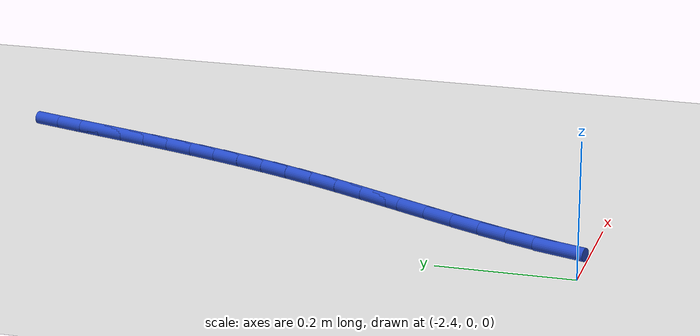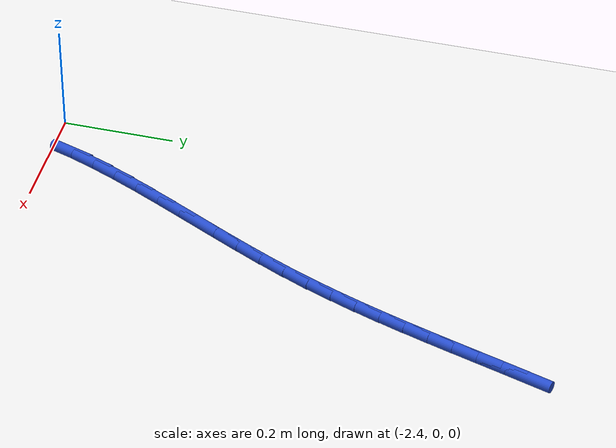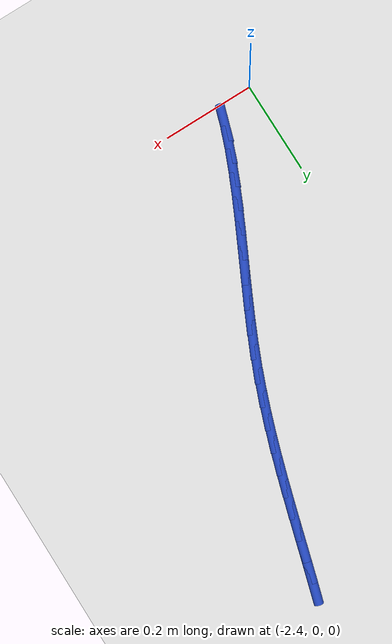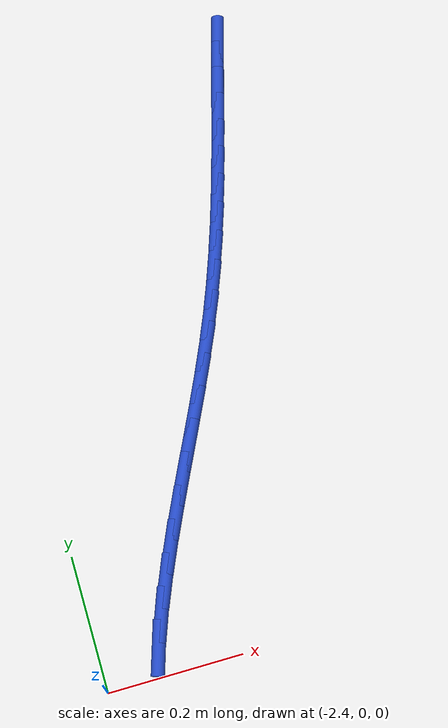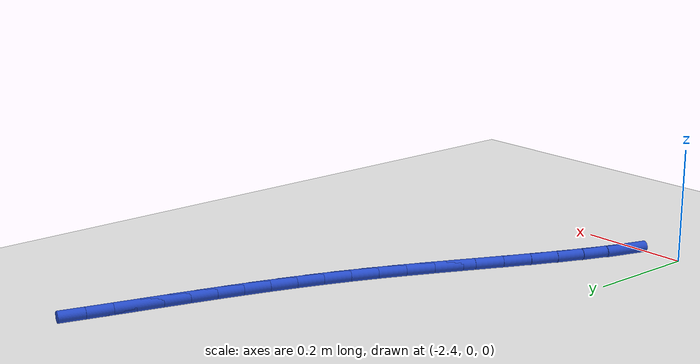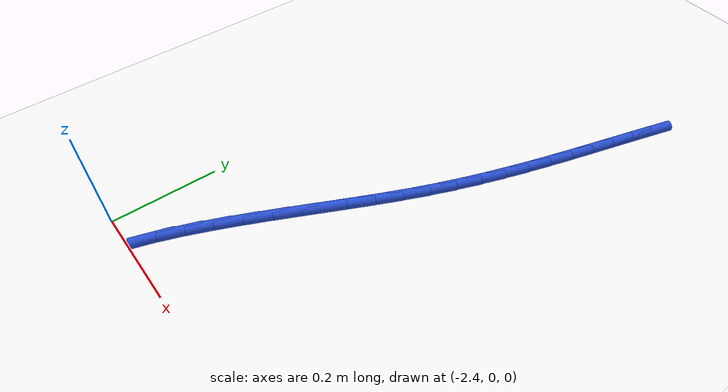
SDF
<sdf version="1.6">
 <world name="default">
  <model name="ground_plane">
   <static>1</static>
   <link name="link">
    <collision name="collision">
     <geometry><plane><normal>0 0 1</normal><size>100 100</size></plane></geometry>
     <surface><friction><ode><mu>100</mu><mu2>50</mu2></ode></friction></surface>
    </collision>
    <visual name="visual">
     <cast_shadows>0</cast_shadows>
     <geometry><plane><normal>0 0 1</normal><size>100 100</size></plane></geometry>
     <material>
      <script><uri>file://media/materials/scripts/gazebo.material</uri><name>Gazebo/WhiteGlow</name></script>
     </material>
    </visual>
   </link>
  </model>
  <model name="line">
   <link name="link_64">
    <pose>-1.966603048253803 0.9256358489963472 0.01 0 1.57 1.2850031332400407</pose>
    <collision name="collision">
     <geometry><cylinder><radius>0.01</radius><length>0.08</length></cylinder></geometry>
    </collision>
    <visual name="visual">
     <material>
      <script><name>Gazebo/Blue</name><uri>file://media/materials/scripts/gazebo.material</uri></script>
     </material>
     <geometry><cylinder><radius>0.01</radius><length>0.08</length></cylinder></geometry>
    </visual>
   </link>
   <link name="link_65">
    <pose>-1.9789790549800668 0.8835172480707604 0.01 0 1.57 1.2897454069455458</pose>
    <collision name="collision">
     <geometry><cylinder><radius>0.01</radius><length>0.08</length></cylinder></geometry>
    </collision>
    <visual name="visual">
     <material>
      <script><name>Gazebo/Blue</name><uri>file://media/materials/scripts/gazebo.material</uri></script>
     </material>
     <geometry><cylinder><radius>0.01</radius><length>0.08</length></cylinder></geometry>
    </visual>
   </link>
   <link name="link_66">
    <pose>-1.9911989002426242 0.8411890068611181 0.01 0 1.57 1.2903337179077154</pose>
    <collision name="collision">
     <geometry><cylinder><radius>0.01</radius><length>0.08</length></cylinder></geometry>
    </collision>
    <visual name="visual">
     <material>
      <script><name>Gazebo/Blue</name><uri>file://media/materials/scripts/gazebo.material</uri></script>
     </material>
     <geometry><cylinder><radius>0.01</radius><length>0.08</length></cylinder></geometry>
    </visual>
   </link>
   <link name="link_67">
    <pose>-2.0034580202247465 0.7986307828988353 0.01 0 1.57 1.2868299119979763</pose>
    <collision name="collision">
     <geometry><cylinder><radius>0.01</radius><length>0.08</length></cylinder></geometry>
    </collision>
    <visual name="visual">
     <material>
      <script><name>Gazebo/Blue</name><uri>file://media/materials/scripts/gazebo.material</uri></script>
     </material>
     <geometry><cylinder><radius>0.01</radius><length>0.08</length></cylinder></geometry>
    </visual>
   </link>
   <link name="link_68">
    <pose>-2.0159518511097048 0.7558222337153248 0.01 0 1.57 1.2793349981316864</pose>
    <collision name="collision">
     <geometry><cylinder><radius>0.01</radius><length>0.08</length></cylinder></geometry>
    </collision>
    <visual name="visual">
     <material>
      <script><name>Gazebo/Blue</name><uri>file://media/materials/scripts/gazebo.material</uri></script>
     </material>
     <geometry><cylinder><radius>0.01</radius><length>0.08</length></cylinder></geometry>
    </visual>
   </link>
   <link name="link_69">
    <pose>-2.028875829080769 0.7127430168420008 0.01 0 1.57 1.2679878106480476</pose>
    <collision name="collision">
     <geometry><cylinder><radius>0.01</radius><length>0.08</length></cylinder></geometry>
    </collision>
    <visual name="visual">
     <material>
      <script><name>Gazebo/Blue</name><uri>file://media/materials/scripts/gazebo.material</uri></script>
     </material>
     <geometry><cylinder><radius>0.01</radius><length>0.08</length></cylinder></geometry>
    </visual>
   </link>
   <link name="link_70">
    <pose>-2.0424253903212106 0.6693727898102769 0.01 0 1.57 1.2529644424801447</pose>
    <collision name="collision">
     <geometry><cylinder><radius>0.01</radius><length>0.08</length></cylinder></geometry>
    </collision>
    <visual name="visual">
     <material>
      <script><name>Gazebo/Blue</name><uri>file://media/materials/scripts/gazebo.material</uri></script>
     </material>
     <geometry><cylinder><radius>0.01</radius><length>0.08</length></cylinder></geometry>
    </visual>
   </link>
   <link name="link_71">
    <pose>-2.0567959710143 0.6256912101515663 0.01 0 1.57 1.2344779908963788</pose>
    <collision name="collision">
     <geometry><cylinder><radius>0.01</radius><length>0.08</length></cylinder></geometry>
    </collision>
    <visual name="visual">
     <material>
      <script><name>Gazebo/Blue</name><uri>file://media/materials/scripts/gazebo.material</uri></script>
     </material>
     <geometry><cylinder><radius>0.01</radius><length>0.08</length></cylinder></geometry>
    </visual>
   </link>
   <link name="link_72">
    <pose>-2.0721830073433067 0.581677935397283 0.01 0 1.57 1.2127780588068247</pose>
    <collision name="collision">
     <geometry><cylinder><radius>0.01</radius><length>0.08</length></cylinder></geometry>
    </collision>
    <visual name="visual">
     <material>
      <script><name>Gazebo/Blue</name><uri>file://media/materials/scripts/gazebo.material</uri></script>
     </material>
     <geometry><cylinder><radius>0.01</radius><length>0.08</length></cylinder></geometry>
    </visual>
   </link>
   <link name="link_73">
    <pose>-2.088781935491503 0.5373126230788406 0.01 0 1.57 1.1881494294017958</pose>
    <collision name="collision">
     <geometry><cylinder><radius>0.01</radius><length>0.08</length></cylinder></geometry>
    </collision>
    <visual name="visual">
     <material>
      <script><name>Gazebo/Blue</name><uri>file://media/materials/scripts/gazebo.material</uri></script>
     </material>
     <geometry><cylinder><radius>0.01</radius><length>0.08</length></cylinder></geometry>
    </visual>
   </link>
   <link name="link_74">
    <pose>-2.106788191642159 0.4925749307276523 0.01 0 1.57 1.1611746376724137</pose>
    <collision name="collision">
     <geometry><cylinder><radius>0.01</radius><length>0.08</length></cylinder></geometry>
    </collision>
    <visual name="visual">
     <material>
      <script><name>Gazebo/Blue</name><uri>file://media/materials/scripts/gazebo.material</uri></script>
     </material>
     <geometry><cylinder><radius>0.01</radius><length>0.08</length></cylinder></geometry>
    </visual>
   </link>
   <link name="link_75">
    <pose>-2.1263815034790623 0.44744792348044843 0.01 0 1.57 1.1373594803939358</pose>
    <collision name="collision">
     <geometry><cylinder><radius>0.01</radius><length>0.08</length></cylinder></geometry>
    </collision>
    <visual name="visual">
     <material>
      <script><name>Gazebo/Blue</name><uri>file://media/materials/scripts/gazebo.material</uri></script>
     </material>
     <geometry><cylinder><radius>0.01</radius><length>0.08</length></cylinder></geometry>
    </visual>
   </link>
   <link name="link_76">
    <pose>-2.1474215923535125 0.40198408464346563 0.01 0 1.57 1.1211448873326912</pose>
    <collision name="collision">
     <geometry><cylinder><radius>0.01</radius><length>0.08</length></cylinder></geometry>
    </collision>
    <visual name="visual">
     <material>
      <script><name>Gazebo/Blue</name><uri>file://media/materials/scripts/gazebo.material</uri></script>
     </material>
     <geometry><cylinder><radius>0.01</radius><length>0.08</length></cylinder></geometry>
    </visual>
   </link>
   <link name="link_77">
    <pose>-2.1694695582340944 0.3563006767090356 0.01 0 1.57 1.1121604182176317</pose>
    <collision name="collision">
     <geometry><cylinder><radius>0.01</radius><length>0.08</length></cylinder></geometry>
    </collision>
    <visual name="visual">
     <material>
      <script><name>Gazebo/Blue</name><uri>file://media/materials/scripts/gazebo.material</uri></script>
     </material>
     <geometry><cylinder><radius>0.01</radius><length>0.08</length></cylinder></geometry>
    </visual>
   </link>
   <link name="link_78">
    <pose>-2.192075075994643 0.3105174405865823 0.01 0 1.57 1.1101059585814792</pose>
    <collision name="collision">
     <geometry><cylinder><radius>0.01</radius><length>0.08</length></cylinder></geometry>
    </collision>
    <visual name="visual">
     <material>
      <script><name>Gazebo/Blue</name><uri>file://media/materials/scripts/gazebo.material</uri></script>
     </material>
     <geometry><cylinder><radius>0.01</radius><length>0.08</length></cylinder></geometry>
    </visual>
   </link>
   <link name="link_79">
    <pose>-2.214787820508997 0.26475411718552827 0.01 0 1.57 1.1149324098239195</pose>
    <collision name="collision">
     <geometry><cylinder><radius>0.01</radius><length>0.08</length></cylinder></geometry>
    </collision>
    <visual name="visual">
     <material>
      <script><name>Gazebo/Blue</name><uri>file://media/materials/scripts/gazebo.material</uri></script>
     </material>
     <geometry><cylinder><radius>0.01</radius><length>0.08</length></cylinder></geometry>
    </visual>
   </link>
   <link name="link_80">
    <pose>-2.237157466650993 0.21913044741529752 0.01 0 1.57 1.1268410600449026</pose>
    <collision name="collision">
     <geometry><cylinder><radius>0.01</radius><length>0.08</length></cylinder></geometry>
    </collision>
    <visual name="visual">
     <material>
      <script><name>Gazebo/Blue</name><uri>file://media/materials/scripts/gazebo.material</uri></script>
     </material>
     <geometry><cylinder><radius>0.01</radius><length>0.08</length></cylinder></geometry>
    </visual>
   </link>
   <link name="link_81">
    <pose>-2.258733689294468 0.1737661721853127 0.01 0 1.57 1.1462953803665064</pose>
    <collision name="collision">
     <geometry><cylinder><radius>0.01</radius><length>0.08</length></cylinder></geometry>
    </collision>
    <visual name="visual">
     <material>
      <script><name>Gazebo/Blue</name><uri>file://media/materials/scripts/gazebo.material</uri></script>
     </material>
     <geometry><cylinder><radius>0.01</radius><length>0.08</length></cylinder></geometry>
    </visual>
   </link>
   <link name="link_82">
    <pose>-2.2790661633132583 0.12878103240499686 0.01 0 1.57 1.1740443916675978</pose>
    <collision name="collision">
     <geometry><cylinder><radius>0.01</radius><length>0.08</length></cylinder></geometry>
    </collision>
    <visual name="visual">
     <material>
      <script><name>Gazebo/Blue</name><uri>file://media/materials/scripts/gazebo.material</uri></script>
     </material>
     <geometry><cylinder><radius>0.01</radius><length>0.08</length></cylinder></geometry>
    </visual>
   </link>
   <link name="link_83">
    <pose>-2.2977045635812026 0.0842947689837739 0.01 0 1.57 1.211153897335236</pose>
    <collision name="collision">
     <geometry><cylinder><radius>0.01</radius><length>0.08</length></cylinder></geometry>
    </collision>
    <visual name="visual">
     <material>
      <script><name>Gazebo/Blue</name><uri>file://media/materials/scripts/gazebo.material</uri></script>
     </material>
     <geometry><cylinder><radius>0.01</radius><length>0.08</length></cylinder></geometry>
    </visual>
   </link>
   <link name="link_84">
    <pose>-2.3141985649721377 0.04042712283106621 0.01 0 1.57 1.259035560597435</pose>
    <collision name="collision">
     <geometry><cylinder><radius>0.01</radius><length>0.08</length></cylinder></geometry>
    </collision>
    <visual name="visual">
     <material>
      <script><name>Gazebo/Blue</name><uri>file://media/materials/scripts/gazebo.material</uri></script>
     </material>
     <geometry><cylinder><radius>0.01</radius><length>0.08</length></cylinder></geometry>
    </visual>
   </link>
  </model>
 </world>
</sdf>
